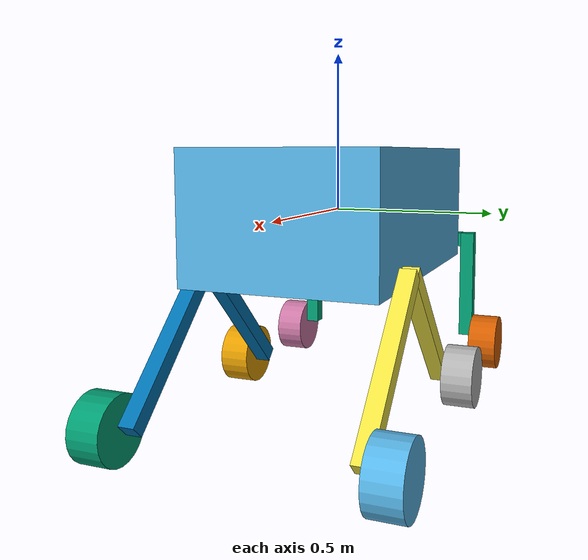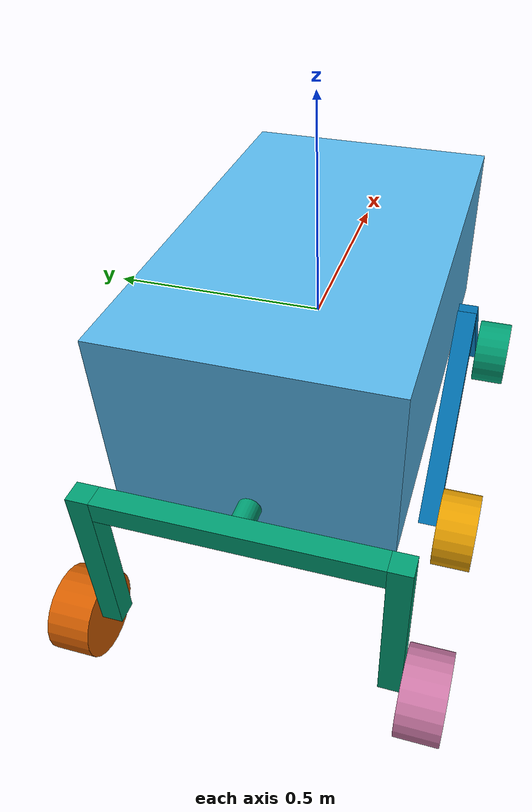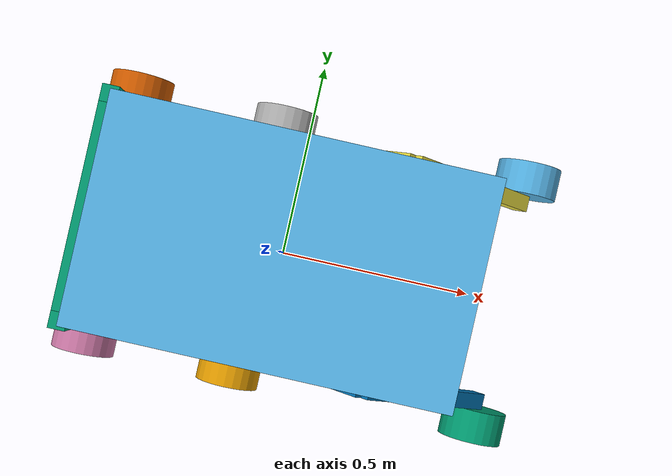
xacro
<?xml version="1.0"?>

<!-- TO-DO -->
<!-- change sizes -->
<!-- change inertia -->

<robot xmlns:xacro="http://www.ros.org/wiki/xacro" name="donatello">

    <xacro:include filename="donatello_include.urdf.xacro"/>
    <xacro:include filename="gazebo.xacro"/>

    <xacro:property name="pi" value="3.1415926"/>
    <xacro:property name="sqrt_2" value="1.41421356"/>

    <!-- SIZES -->

    <xacro:property name="prism_width" value="0.05"/>

    <xacro:property name="base_x" value="1.0"/>
    <xacro:property name="base_y" value="0.6"/>
    <xacro:property name="base_z" value="0.4"/>

    <xacro:property name="rear_cyl_l" value="0.05"/>
    <xacro:property name="rear_cyl_r" value="0.025"/>
    <xacro:property name="rear_width" value="0.6"/>

    <xacro:property name="axle_height" value="0.4"/>

    <xacro:property name="wheel_width" value="0.1"/>
    <xacro:property name="wheel_radius" value="0.1"/>

    <!-- INERTIA -->

    <!-- LINKS -->

    <!-- soluciona el problema del root link con inercia en Gazebo-->
    <link name="dummy_link">
    </link>

    <link name="base_link">
        <visual>
            <geometry>
                <box size="${base_x} ${base_y} ${base_z}"/>
            </geometry>
        </visual>
        <collision>
            <geometry>
                <box size="${base_x} ${base_y} ${base_z}"/>
            </geometry>
        </collision>
        <inertial>
            <mass value="20.0"/>
            <origin xyz="0 0 0"/>
            <inertia ixx="0.3" ixy="0.0" ixz="0.0" iyy="0.3" iyz="0.0" izz="0.3"/>
        </inertial>
    </link>

    <link name="rear_axle_link">
        <visual>
            <geometry>
                <cylinder length="${rear_cyl_l}" radius="${rear_cyl_r}"/>
            </geometry>
            <origin xyz="${-rear_cyl_l/2} 0 0" rpy="0 ${-pi/2} 0"/>
        </visual>
        <visual>
            <geometry>
                <box size="${prism_width} ${rear_width} ${prism_width}"/>
            </geometry>
            <origin xyz="${-rear_cyl_l-prism_width/2} 0 0" rpy="0 0 0"/>
        </visual>
        <visual>
            <geometry>
                <box size="${prism_width} ${prism_width} ${axle_height}"/>
            </geometry>
            <origin xyz="${-rear_cyl_l-prism_width/2} ${rear_width/2+prism_width/2} ${-axle_height/2+prism_width/2}" rpy="0 0 0"/>
        </visual>
        <visual>
            <geometry>
                <box size="${prism_width} ${prism_width} ${axle_height}"/>
            </geometry>
            <origin xyz="${-rear_cyl_l-prism_width/2} ${-(rear_width/2+prism_width/2)} ${-axle_height/2+prism_width/2}" rpy="0 0 0"/>
        </visual>

        <collision>
            <geometry>
                <cylinder length="${rear_cyl_l}" radius="${rear_cyl_r}"/>
            </geometry>
            <origin xyz="${-rear_cyl_l/2} 0 0" rpy="0 ${-pi/2} 0"/>
        </collision>
        <collision>
            <geometry>
                <box size="${prism_width} ${rear_width} ${prism_width}"/>
            </geometry>
            <origin xyz="${-rear_cyl_l-prism_width/2} 0 0" rpy="0 0 0"/>
        </collision>
        <collision>
            <geometry>
                <box size="${prism_width} ${prism_width} ${axle_height}"/>
            </geometry>
            <origin xyz="${-rear_cyl_l-prism_width/2} ${rear_width/2+prism_width/2} ${-axle_height/2+prism_width/2}" rpy="0 0 0"/>
        </collision>
        <collision>
            <geometry>
                <box size="${prism_width} ${prism_width} ${axle_height}"/>
            </geometry>
            <origin xyz="${-rear_cyl_l-prism_width/2} ${-(rear_width/2+prism_width/2)} ${-axle_height/2+prism_width/2}" rpy="0 0 0"/>
        </collision>

        <inertial>
            <mass value="1.0"/>
            <origin xyz="0 0 0"/>
            <inertia ixx="0.083" ixy="0.0" ixz="0.0" iyy="0.021" iyz="0.0" izz="0.1"/>
        </inertial>

    </link>

    <link name="front_left_axle_link">
        <visual>
            <geometry>
                <box size="${prism_width} ${prism_width} ${sqrt_2*base_z}"/>
            </geometry>
            <origin xyz="${-axle_height/2} 0 ${-axle_height/2}" rpy="0 ${pi/4} 0"/>
        </visual>
        <visual>
            <geometry>
                <box size="${prism_width} ${prism_width} ${sqrt_2*base_z}"/>
            </geometry>
            <origin xyz="${axle_height/2} 0 ${-axle_height/2}" rpy="0 ${-pi/4} 0"/>
        </visual>

        <collision>
            <geometry>
                <box size="${prism_width} ${prism_width} ${sqrt_2*base_z}"/>
            </geometry>
            <origin xyz="${-axle_height/2} 0 ${-axle_height/2}" rpy="0 ${pi/4} 0"/>
        </collision>
        <collision>
            <geometry>
                <box size="${prism_width} ${prism_width} ${sqrt_2*base_z}"/>
            </geometry>
            <origin xyz="${axle_height/2} 0 ${-axle_height/2}" rpy="0 ${-pi/4} 0"/>
        </collision>

        <inertial>
            <mass value="1.0"/>
            <origin xyz="0 0 0"/>
            <inertia ixx="0.083" ixy="0.0" ixz="0.0" iyy="0.021" iyz="0.0" izz="0.1"/>
        </inertial>
    </link>

    <link name="front_right_axle_link">
        <visual>
            <geometry>
                <box size="${prism_width} ${prism_width} ${sqrt_2*base_z}"/>
            </geometry>
            <origin xyz="${-axle_height/2} 0 ${-axle_height/2}" rpy="0 ${pi/4} 0"/>
        </visual>
        <visual>
            <geometry>
                <box size="${prism_width} ${prism_width} ${sqrt_2*base_z}"/>
            </geometry>
            <origin xyz="${axle_height/2} 0 ${-axle_height/2}" rpy="0 ${-pi/4} 0"/>
        </visual>

        <collision>
            <geometry>
                <box size="${prism_width} ${prism_width} ${sqrt_2*base_z}"/>
            </geometry>
            <origin xyz="${-axle_height/2} 0 ${-axle_height/2}" rpy="0 ${pi/4} 0"/>
        </collision>
        <collision>
            <geometry>
                <box size="${prism_width} ${prism_width} ${sqrt_2*base_z}"/>
            </geometry>
            <origin xyz="${axle_height/2} 0 ${-axle_height/2}" rpy="0 ${-pi/4} 0"/>
        </collision>

        <inertial>
            <mass value="1.0"/>
            <origin xyz="0 0 0"/>
            <inertia ixx="0.083" ixy="0.0" ixz="0.0" iyy="0.021" iyz="0.0" izz="0.1"/>
        </inertial>
    </link>

    <!-- JOINTS -->

    <joint name="dummy_joint" type="fixed">
        <parent link="dummy_link"/>
        <child link="base_link"/>
        <origin xyz="0 0 0" rpy="0 0 0"/>
    </joint>

    <joint name="rear_axle_joint" type="fixed">
        <parent link="base_link"/>
        <child link="rear_axle_link"/>
        <origin xyz="${-base_x/2} 0 -0.15" rpy="0 0 0"/>
    </joint>

    <joint name="front_left_axle_joint" type="fixed">
        <parent link="base_link"/>
        <child link="front_left_axle_link"/>
        <origin xyz="0.3 ${0.3+prism_width/2} -0.15" rpy="0 0 0"/>
    </joint>

    <joint name="front_right_axle_joint" type="fixed">
        <parent link="base_link"/>
        <child link="front_right_axle_link"/>
        <origin xyz="0.3 ${-(0.3+prism_width/2)} -0.15" rpy="0 0 0"/>
    </joint>

    <xacro:wheel prefix="back_left_wheel" parent="rear_axle_link" x="${-rear_cyl_l-prism_width/2}" y="${rear_width/2+prism_width+0.1/2}" z="${-axle_height}" width="${wheel_width}" radius="${wheel_radius}" roll="${-pi/2}"/>
    <xacro:wheel prefix="back_right_wheel" parent="rear_axle_link" x="${-rear_cyl_l-prism_width/2}" y="${-(rear_width/2+prism_width+0.1/2)}" z="${-axle_height}" width="${wheel_width}" radius="${wheel_radius}" roll="${-pi/2}"/>

    <xacro:wheel prefix="center_left_wheel" parent="front_left_axle_link" x="${-axle_height}" y="${prism_width/2+0.1/2}" z="${-axle_height}" width="${wheel_width}" radius="${wheel_radius}" roll="${-pi/2}"/>
    <xacro:wheel prefix="center_right_wheel" parent="front_right_axle_link" x="${-axle_height}" y="${-(prism_width/2+0.1/2)}" z="${-axle_height}" width="${wheel_width}" radius="${wheel_radius}" roll="${-pi/2}"/>

    <xacro:wheel prefix="front_left_wheel" parent="front_left_axle_link" x="${axle_height}" y="${prism_width/2+0.1/2}" z="${-axle_height}" width="${wheel_width}" radius="${wheel_radius}" roll="${-pi/2}"/>
    <xacro:wheel prefix="front_right_wheel" parent="front_right_axle_link" x="${axle_height}" y="${-(prism_width/2+0.1/2)}" z="${-axle_height}" width="${wheel_width}" radius="${wheel_radius}" roll="${-pi/2}"/>

</robot>

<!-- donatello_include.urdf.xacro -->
<robot xmlns:xacro="http://www.ros.org/wiki/xacro">

<xacro:macro name="wheel" params="prefix parent x y z width radius roll">

    <link name="${prefix}_link">
        <visual>
            <geometry>
                <cylinder length="${width}" radius="${radius}"/>
            </geometry>
            <origin xyz="0 0 0" rpy="0 0 0"/>
        </visual>
        <collision>
            <geometry>
                <cylinder length="${width}" radius="${radius}"/>
            </geometry>
            <origin xyz="0 0 0" rpy="0 0 0"/>
        </collision>
        <inertial>
            <mass value="1.0"/>
            <origin xyz="0 0 0"/>
            <inertia ixx="0.083" ixy="0.0" ixz="0.0" iyy="0.021" iyz="0.0" izz="0.1"/>
        </inertial>
    </link>

    <joint name="${prefix}_joint" type="continuous">
        <parent link="${parent}"/>
        <child link="${prefix}_link"/>
        <origin xyz="${x} ${y} ${z}" rpy="${roll} 0 0"/>
        <axis xyz="0 0 1" />
    </joint>

</xacro:macro>

</robot>
